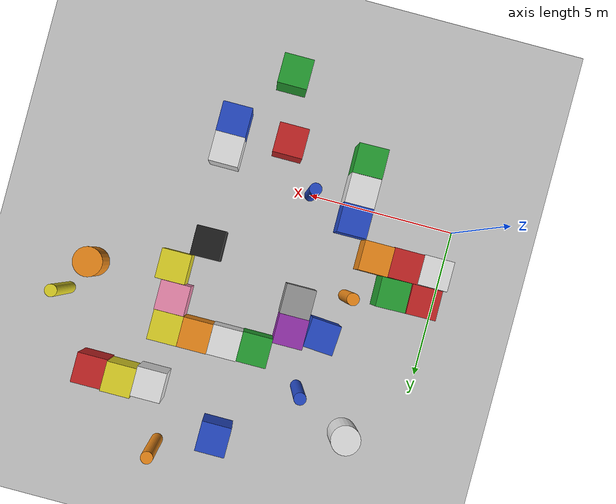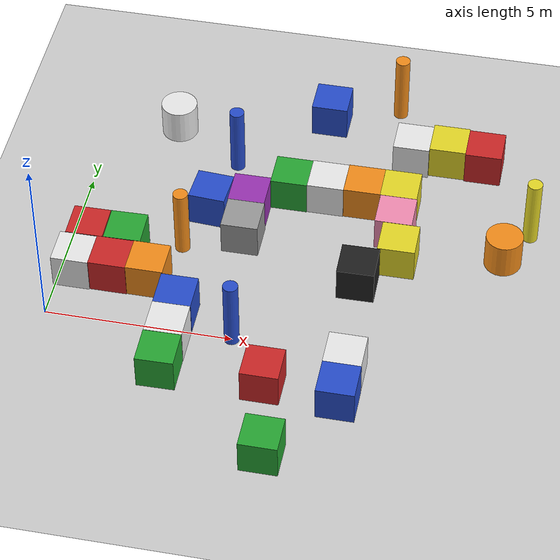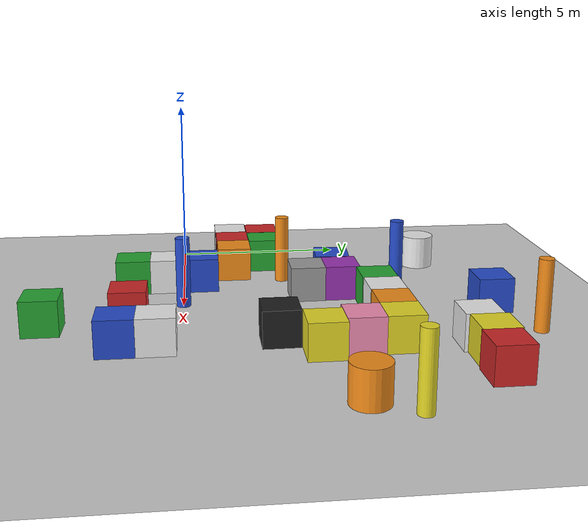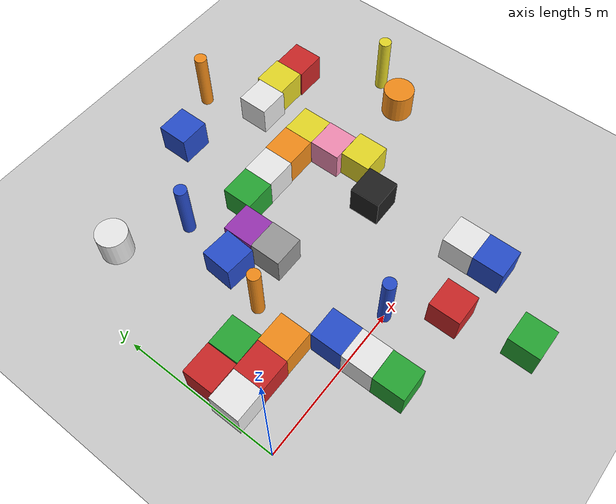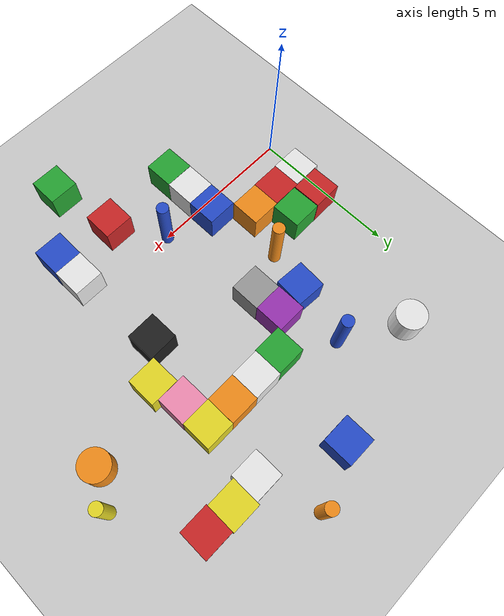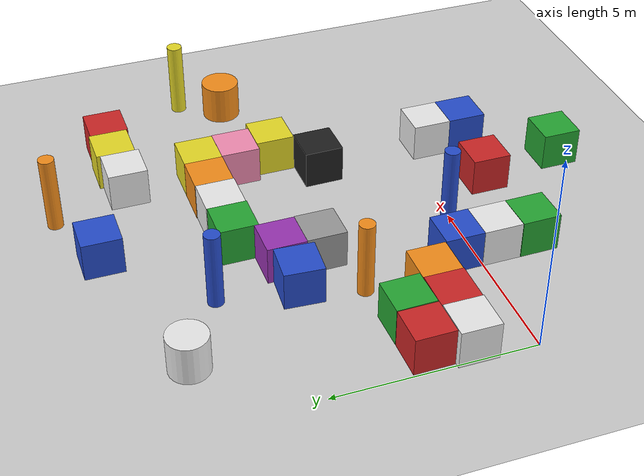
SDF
<sdf version="1.6">
 <world name="default">
  <light name="sun" type="directional">
   <pose>0 0 10 0 -0 0</pose>
   <diffuse>0.8 0.8 0.8 1</diffuse>
   <specular>0.1 0.1 0.1 1</specular>
   <attenuation>
    <range>1000</range>
    <constant>0.9</constant>
    <linear>0.01</linear>
    <quadratic>0.001</quadratic>
   </attenuation>
   <direction>-0.5 0.5 -1</direction>
  </light>
  <model name="ground_plane">
   <static>1</static>
   <link name="link">
    <collision name="collision">
     <geometry><plane><normal>0 0 1</normal><size>100 100</size></plane></geometry>
     <surface><friction><ode><mu>100</mu><mu2>50</mu2></ode></friction></surface>
    </collision>
    <visual name="visual">
     <cast_shadows>0</cast_shadows>
     <geometry><plane><normal>0 0 1</normal><size>100 100</size></plane></geometry>
     <material>
      <script><uri>file://media/materials/scripts/gazebo.material</uri><name>Gazebo/Grey</name></script>
     </material>
    </visual>
   </link>
  </model>
  <gravity>0 0 -9.8</gravity>
  <magnetic_field>6e-06 2.3e-05 -4.2e-05</magnetic_field>
  <atmosphere type="adiabatic"/>
  <physics name="default_physics" default="0" type="ode">
   <max_step_size>0.001</max_step_size>
   <real_time_factor>1</real_time_factor>
   <real_time_update_rate>1000</real_time_update_rate>
  </physics>
  <scene><ambient>0.4 0.4 0.4 1</ambient><background>0.7 0.7 0.7 1</background><shadows>1</shadows></scene>
  <spherical_coordinates>
   <surface_model>EARTH_WGS84</surface_model>
   <latitude_deg>0</latitude_deg>
   <longitude_deg>0</longitude_deg>
   <elevation>0</elevation>
   <heading_deg>0</heading_deg>
  </spherical_coordinates>
  <model name="model_2">
   <link name="my_box">
    <inertial>
     <mass>1</mass>
     <inertia><ixx>1</ixx><ixy>0</ixy><ixz>0</ixz><iyy>100</iyy><iyz>0</iyz><izz>1</izz></inertia>
    </inertial>
    <collision name="my_box_collision">
     <pose>0 0 1 0 -0 0</pose>
     <geometry><cylinder><length>2</length><radius>0.2</radius></cylinder></geometry>
    </collision>
    <visual name="my_box_visual">
     <pose>0 0 1 0 -0 0</pose>
     <geometry><cylinder><length>2</length><radius>0.2</radius></cylinder></geometry>
     <material>
      <script><name>Gazebo/Blue</name><uri>file://media/materials/scripts/gazebo.material</uri></script>
     </material>
    </visual>
   </link>
   <pose>5 0 -1e-06 0 -0 0</pose>
  </model>
  <model name="model_1">
   <link name="my_box">
    <inertial>
     <mass>1</mass>
     <inertia><ixx>1</ixx><ixy>0</ixy><ixz>0</ixz><iyy>100</iyy><iyz>0</iyz><izz>1</izz></inertia>
    </inertial>
    <collision name="my_box_collision">
     <pose>0 0 1 0 -0 0</pose>
     <geometry><cylinder><length>2</length><radius>0.2</radius></cylinder></geometry>
    </collision>
    <visual name="my_box_visual">
     <pose>0 0 1 0 -0 0</pose>
     <geometry><cylinder><length>2</length><radius>0.2</radius></cylinder></geometry>
     <material>
      <script><name>Gazebo/Orange</name><uri>file://media/materials/scripts/gazebo.material</uri></script>
     </material>
    </visual>
   </link>
   <pose>3 3 -9e-06 0 -0 0</pose>
  </model>
  <model name="unit_box_0">
   <pose>0.56706 2.5251 0.499995 -1e-05 0 0.011377</pose>
   <link name="link">
    <inertial>
     <mass>1</mass>
     <inertia>
      <ixx>0.166667</ixx>
      <ixy>0</ixy>
      <ixz>0</ixz>
      <iyy>0.166667</iyy>
      <iyz>0</iyz>
      <izz>0.166667</izz>
     </inertia>
    </inertial>
    <collision name="collision"><geometry><box><size>1 1 1</size></box></geometry></collision>
    <visual name="visual">
     <geometry><box><size>1 1 1</size></box></geometry>
     <material>
      <script><name>Gazebo/Red</name><uri>file://media/materials/scripts/gazebo.material</uri></script>
     </material>
    </visual>
   </link>
  </model>
  <model name="unit_box_1">
   <pose>1.58841 2.54289 0.499995 1e-05 -0 0.021621</pose>
   <link name="link">
    <inertial>
     <mass>1</mass>
     <inertia>
      <ixx>0.166667</ixx>
      <ixy>0</ixy>
      <ixz>0</ixz>
      <iyy>0.166667</iyy>
      <iyz>0</iyz>
      <izz>0.166667</izz>
     </inertia>
    </inertial>
    <collision name="collision"><geometry><box><size>1 1 1</size></box></geometry></collision>
    <visual name="visual">
     <geometry><box><size>1 1 1</size></box></geometry>
     <material>
      <script><name>Gazebo/Green</name><uri>file://media/materials/scripts/gazebo.material</uri></script>
     </material>
    </visual>
   </link>
  </model>
  <model name="unit_box_2">
   <pose>3.42516 0.521958 0.499995 0 1e-05 0.007024</pose>
   <link name="link">
    <inertial>
     <mass>1</mass>
     <inertia>
      <ixx>0.166667</ixx>
      <ixy>0</ixy>
      <ixz>0</ixz>
      <iyy>0.166667</iyy>
      <iyz>0</iyz>
      <izz>0.166667</izz>
     </inertia>
    </inertial>
    <collision name="collision"><geometry><box><size>1 1 1</size></box></geometry></collision>
    <visual name="visual">
     <geometry><box><size>1 1 1</size></box></geometry>
     <material>
      <script><name>Gazebo/Blue</name><uri>file://media/materials/scripts/gazebo.material</uri></script>
     </material>
    </visual>
   </link>
  </model>
  <model name="unit_box_3">
   <pose>4.51931 4.57068 0.499995 0 -1e-05 0.006026</pose>
   <link name="link">
    <inertial>
     <mass>1</mass>
     <inertia>
      <ixx>0.166667</ixx>
      <ixy>0</ixy>
      <ixz>0</ixz>
      <iyy>0.166667</iyy>
      <iyz>0</iyz>
      <izz>0.166667</izz>
     </inertia>
    </inertial>
    <collision name="collision"><geometry><box><size>1 1 1</size></box></geometry></collision>
    <visual name="visual">
     <geometry><box><size>1 1 1</size></box></geometry>
     <material>
      <script><name>Gazebo/Purple</name><uri>file://media/materials/scripts/gazebo.material</uri></script>
     </material>
    </visual>
   </link>
  </model>
  <model name="unit_box_4">
   <pose>3.48415 4.46033 0.5 0 0 -0.068279</pose>
   <link name="link">
    <inertial>
     <mass>1</mass>
     <inertia>
      <ixx>0.166667</ixx>
      <ixy>0</ixy>
      <ixz>0</ixz>
      <iyy>0.166667</iyy>
      <iyz>0</iyz>
      <izz>0.166667</izz>
     </inertia>
    </inertial>
    <collision name="collision"><geometry><box><size>1 1 1</size></box></geometry></collision>
    <visual name="visual">
     <geometry><box><size>1 1 1</size></box></geometry>
     <material>
      <script><name>Gazebo/Blue</name><uri>file://media/materials/scripts/gazebo.material</uri></script>
     </material>
    </visual>
   </link>
  </model>
  <model name="unit_box_5">
   <pose>5.51478 5.45584 0.499995 1e-05 -0 0.004832</pose>
   <link name="link">
    <inertial>
     <mass>1</mass>
     <inertia>
      <ixx>0.166667</ixx>
      <ixy>0</ixy>
      <ixz>0</ixz>
      <iyy>0.166667</iyy>
      <iyz>0</iyz>
      <izz>0.166667</izz>
     </inertia>
    </inertial>
    <collision name="collision"><geometry><box><size>1 1 1</size></box></geometry></collision>
    <visual name="visual">
     <geometry><box><size>1 1 1</size></box></geometry>
     <material>
      <script><name>Gazebo/Green</name><uri>file://media/materials/scripts/gazebo.material</uri></script>
     </material>
    </visual>
   </link>
  </model>
  <model name="unit_box_6">
   <pose>6.51469 5.479 0.499995 1e-05 -0 0.004839</pose>
   <link name="link">
    <inertial>
     <mass>1</mass>
     <inertia>
      <ixx>0.166667</ixx>
      <ixy>0</ixy>
      <ixz>0</ixz>
      <iyy>0.166667</iyy>
      <iyz>0</iyz>
      <izz>0.166667</izz>
     </inertia>
    </inertial>
    <collision name="collision"><geometry><box><size>1 1 1</size></box></geometry></collision>
    <visual name="visual">
     <geometry><box><size>1 1 1</size></box></geometry>
     <material>
      <script><name>Gazebo/White</name><uri>file://media/materials/scripts/gazebo.material</uri></script>
     </material>
    </visual>
   </link>
  </model>
  <model name="unit_box_7">
   <pose>7.51493 5.4972 0.5 0 -0 0.005481</pose>
   <link name="link">
    <inertial>
     <mass>1</mass>
     <inertia>
      <ixx>0.166667</ixx>
      <ixy>0</ixy>
      <ixz>0</ixz>
      <iyy>0.166667</iyy>
      <iyz>0</iyz>
      <izz>0.166667</izz>
     </inertia>
    </inertial>
    <collision name="collision"><geometry><box><size>1 1 1</size></box></geometry></collision>
    <visual name="visual">
     <geometry><box><size>1 1 1</size></box></geometry>
     <material>
      <script><name>Gazebo/Orange</name><uri>file://media/materials/scripts/gazebo.material</uri></script>
     </material>
    </visual>
   </link>
  </model>
  <model name="unit_box_8">
   <pose>8.51552 5.50286 0.499995 -1e-05 0 0.004595</pose>
   <link name="link">
    <inertial>
     <mass>1</mass>
     <inertia>
      <ixx>0.166667</ixx>
      <ixy>0</ixy>
      <ixz>0</ixz>
      <iyy>0.166667</iyy>
      <iyz>0</iyz>
      <izz>0.166667</izz>
     </inertia>
    </inertial>
    <collision name="collision"><geometry><box><size>1 1 1</size></box></geometry></collision>
    <visual name="visual">
     <geometry><box><size>1 1 1</size></box></geometry>
     <material>
      <script><name>Gazebo/Yellow</name><uri>file://media/materials/scripts/gazebo.material</uri></script>
     </material>
    </visual>
   </link>
  </model>
  <model name="unit_box_9">
   <pose>8.53764 4.50171 0.499995 1e-05 -0 0.00505</pose>
   <link name="link">
    <inertial>
     <mass>1</mass>
     <inertia>
      <ixx>0.166667</ixx>
      <ixy>0</ixy>
      <ixz>0</ixz>
      <iyy>0.166667</iyy>
      <iyz>0</iyz>
      <izz>0.166667</izz>
     </inertia>
    </inertial>
    <collision name="collision"><geometry><box><size>1 1 1</size></box></geometry></collision>
    <visual name="visual">
     <geometry><box><size>1 1 1</size></box></geometry>
     <material>
      <script><name>Gazebo/Pink</name><uri>file://media/materials/scripts/gazebo.material</uri></script>
     </material>
    </visual>
   </link>
  </model>
  <model name="unit_cylinder_1">
   <pose>11.5174 4.07528 0.499993 -3e-06 -2e-06 -6.4e-05</pose>
   <link name="link">
    <inertial>
     <mass>1</mass>
     <inertia><ixx>0.145833</ixx><ixy>0</ixy><ixz>0</ixz><iyy>0.145833</iyy><iyz>0</iyz><izz>0.125</izz></inertia>
    </inertial>
    <collision name="collision">
     <geometry><cylinder><radius>0.5</radius><length>1</length></cylinder></geometry>
    </collision>
    <visual name="visual">
     <geometry><cylinder><radius>0.5</radius><length>1</length></cylinder></geometry>
     <material>
      <script><name>Gazebo/Orange</name><uri>file://media/materials/scripts/gazebo.material</uri></script>
     </material>
    </visual>
   </link>
  </model>
  <model name="unit_cylinder_2">
   <pose>1.87784 7.53775 0.499994 -4e-06 -1e-06 0</pose>
   <link name="link">
    <inertial>
     <mass>1</mass>
     <inertia><ixx>0.145833</ixx><ixy>0</ixy><ixz>0</ixz><iyy>0.145833</iyy><iyz>0</iyz><izz>0.125</izz></inertia>
    </inertial>
    <collision name="collision">
     <geometry><cylinder><radius>0.5</radius><length>1</length></cylinder></geometry>
    </collision>
    <visual name="visual">
     <geometry><cylinder><radius>0.5</radius><length>1</length></cylinder></geometry>
     <material>
      <script><name>Gazebo/White</name><uri>file://media/materials/scripts/gazebo.material</uri></script>
     </material>
    </visual>
   </link>
  </model>
  <model name="unit_box_10">
   <pose>6.06237 8.61951 0.499995 0 1e-05 -1e-05</pose>
   <link name="link">
    <inertial>
     <mass>1</mass>
     <inertia>
      <ixx>0.166667</ixx>
      <ixy>0</ixy>
      <ixz>0</ixz>
      <iyy>0.166667</iyy>
      <iyz>0</iyz>
      <izz>0.166667</izz>
     </inertia>
    </inertial>
    <collision name="collision"><geometry><box><size>1 1 1</size></box></geometry></collision>
    <visual name="visual">
     <geometry><box><size>1 1 1</size></box></geometry>
     <material>
      <script><name>Gazebo/Blue</name><uri>file://media/materials/scripts/gazebo.material</uri></script>
     </material>
    </visual>
   </link>
  </model>
  <model name="unit_box_11">
   <pose>9.55676 7.53593 0.499995 -1e-05 0 0.002414</pose>
   <link name="link">
    <inertial>
     <mass>1</mass>
     <inertia>
      <ixx>0.166667</ixx>
      <ixy>0</ixy>
      <ixz>0</ixz>
      <iyy>0.166667</iyy>
      <iyz>0</iyz>
      <izz>0.166667</izz>
     </inertia>
    </inertial>
    <collision name="collision"><geometry><box><size>1 1 1</size></box></geometry></collision>
    <visual name="visual">
     <geometry><box><size>1 1 1</size></box></geometry>
     <material>
      <script><name>Gazebo/Yellow</name><uri>file://media/materials/scripts/gazebo.material</uri></script>
     </material>
    </visual>
   </link>
  </model>
  <model name="unit_box_12">
   <pose>8.55699 7.4387 0.499995 -1e-05 -0 0.002416</pose>
   <link name="link">
    <inertial>
     <mass>1</mass>
     <inertia>
      <ixx>0.166667</ixx>
      <ixy>0</ixy>
      <ixz>0</ixz>
      <iyy>0.166667</iyy>
      <iyz>0</iyz>
      <izz>0.166667</izz>
     </inertia>
    </inertial>
    <collision name="collision"><geometry><box><size>1 1 1</size></box></geometry></collision>
    <visual name="visual">
     <geometry><box><size>1 1 1</size></box></geometry>
     <material>
      <script><name>Gazebo/White</name><uri>file://media/materials/scripts/gazebo.material</uri></script>
     </material>
    </visual>
   </link>
  </model>
  <model name="unit_box_13">
   <pose>0.436671 1.5071 0.499995 0 -1e-05 0.000746</pose>
   <link name="link">
    <inertial>
     <mass>1</mass>
     <inertia>
      <ixx>0.166667</ixx>
      <ixy>0</ixy>
      <ixz>0</ixz>
      <iyy>0.166667</iyy>
      <iyz>0</iyz>
      <izz>0.166667</izz>
     </inertia>
    </inertial>
    <collision name="collision"><geometry><box><size>1 1 1</size></box></geometry></collision>
    <visual name="visual">
     <geometry><box><size>1 1 1</size></box></geometry>
     <material>
      <script><name>Gazebo/White</name><uri>file://media/materials/scripts/gazebo.material</uri></script>
     </material>
    </visual>
   </link>
  </model>
  <model name="unit_box_14">
   <pose>1.43671 1.52938 0.499995 -0 1e-05 0.000769</pose>
   <link name="link">
    <inertial>
     <mass>1</mass>
     <inertia>
      <ixx>0.166667</ixx>
      <ixy>0</ixy>
      <ixz>0</ixz>
      <iyy>0.166667</iyy>
      <iyz>0</iyz>
      <izz>0.166667</izz>
     </inertia>
    </inertial>
    <collision name="collision"><geometry><box><size>1 1 1</size></box></geometry></collision>
    <visual name="visual">
     <geometry><box><size>1 1 1</size></box></geometry>
     <material>
      <script><name>Gazebo/Red</name><uri>file://media/materials/scripts/gazebo.material</uri></script>
     </material>
    </visual>
   </link>
  </model>
  <model name="unit_box_15">
   <pose>2.43673 1.54404 0.499995 -1e-05 -0 0.000759</pose>
   <link name="link">
    <inertial>
     <mass>1</mass>
     <inertia>
      <ixx>0.166667</ixx>
      <ixy>0</ixy>
      <ixz>0</ixz>
      <iyy>0.166667</iyy>
      <iyz>0</iyz>
      <izz>0.166667</izz>
     </inertia>
    </inertial>
    <collision name="collision"><geometry><box><size>1 1 1</size></box></geometry></collision>
    <visual name="visual">
     <geometry><box><size>1 1 1</size></box></geometry>
     <material>
      <script><name>Gazebo/Orange</name><uri>file://media/materials/scripts/gazebo.material</uri></script>
     </material>
    </visual>
   </link>
  </model>
  <model name="unit_box_16">
   <pose>3.42782 -0.47824 0.499995 0 1e-05 0.007044</pose>
   <link name="link">
    <inertial>
     <mass>1</mass>
     <inertia>
      <ixx>0.166667</ixx>
      <ixy>0</ixy>
      <ixz>0</ixz>
      <iyy>0.166667</iyy>
      <iyz>0</iyz>
      <izz>0.166667</izz>
     </inertia>
    </inertial>
    <collision name="collision"><geometry><box><size>1 1 1</size></box></geometry></collision>
    <visual name="visual">
     <geometry><box><size>1 1 1</size></box></geometry>
     <material>
      <script><name>Gazebo/White</name><uri>file://media/materials/scripts/gazebo.material</uri></script>
     </material>
    </visual>
   </link>
  </model>
  <model name="unit_box_17">
   <pose>3.43343 -1.48239 0.499995 1e-05 -0 0.014804</pose>
   <link name="link">
    <inertial>
     <mass>1</mass>
     <inertia>
      <ixx>0.166667</ixx>
      <ixy>0</ixy>
      <ixz>0</ixz>
      <iyy>0.166667</iyy>
      <iyz>0</iyz>
      <izz>0.166667</izz>
     </inertia>
    </inertial>
    <collision name="collision"><geometry><box><size>1 1 1</size></box></geometry></collision>
    <visual name="visual">
     <geometry><box><size>1 1 1</size></box></geometry>
     <material>
      <script><name>Gazebo/Green</name><uri>file://media/materials/scripts/gazebo.material</uri></script>
     </material>
    </visual>
   </link>
  </model>
  <model name="unit_box_18">
   <pose>8.0798 -0.648742 0.499995 -1e-05 0 0.000998</pose>
   <link name="link">
    <inertial>
     <mass>1</mass>
     <inertia>
      <ixx>0.166667</ixx>
      <ixy>0</ixy>
      <ixz>0</ixz>
      <iyy>0.166667</iyy>
      <iyz>0</iyz>
      <izz>0.166667</izz>
     </inertia>
    </inertial>
    <collision name="collision"><geometry><box><size>1 1 1</size></box></geometry></collision>
    <visual name="visual">
     <geometry><box><size>1 1 1</size></box></geometry>
     <material>
      <script><name>Gazebo/White</name><uri>file://media/materials/scripts/gazebo.material</uri></script>
     </material>
    </visual>
   </link>
  </model>
  <model name="unit_box_19">
   <pose>10.5569 7.49686 0.499995 0 -1e-05 0.002334</pose>
   <link name="link">
    <inertial>
     <mass>1</mass>
     <inertia>
      <ixx>0.166667</ixx>
      <ixy>0</ixy>
      <ixz>0</ixz>
      <iyy>0.166667</iyy>
      <iyz>0</iyz>
      <izz>0.166667</izz>
     </inertia>
    </inertial>
    <collision name="collision"><geometry><box><size>1 1 1</size></box></geometry></collision>
    <visual name="visual">
     <geometry><box><size>1 1 1</size></box></geometry>
     <material>
      <script><name>Gazebo/Red</name><uri>file://media/materials/scripts/gazebo.material</uri></script>
     </material>
    </visual>
   </link>
  </model>
  <model name="unit_box_20">
   <pose>8.77296 3.49776 0.499995 -1e-05 -0 0.006374</pose>
   <link name="link">
    <inertial>
     <mass>1</mass>
     <inertia>
      <ixx>0.166667</ixx>
      <ixy>0</ixy>
      <ixz>0</ixz>
      <iyy>0.166667</iyy>
      <iyz>0</iyz>
      <izz>0.166667</izz>
     </inertia>
    </inertial>
    <collision name="collision"><geometry><box><size>1 1 1</size></box></geometry></collision>
    <visual name="visual">
     <geometry><box><size>1 1 1</size></box></geometry>
     <material>
      <script><name>Gazebo/Yellow</name><uri>file://media/materials/scripts/gazebo.material</uri></script>
     </material>
    </visual>
   </link>
  </model>
  <model name="model_2_clone">
   <link name="my_box">
    <inertial>
     <mass>1</mass>
     <inertia><ixx>1</ixx><ixy>0</ixy><ixz>0</ixz><iyy>100</iyy><iyz>0</iyz><izz>1</izz></inertia>
    </inertial>
    <collision name="my_box_collision">
     <pose>0 0 1 0 -0 0</pose>
     <geometry><cylinder><length>2</length><radius>0.2</radius></cylinder></geometry>
    </collision>
    <visual name="my_box_visual">
     <pose>0 0 1 0 -0 0</pose>
     <geometry><cylinder><length>2</length><radius>0.2</radius></cylinder></geometry>
     <material>
      <script><name>Gazebo/Blue</name><uri>file://media/materials/scripts/gazebo.material</uri></script>
     </material>
    </visual>
   </link>
   <pose>3.79216 6.40427 -9e-06 0 -0 0</pose>
  </model>
  <model name="model_2_clone_1">
   <link name="my_box">
    <inertial>
     <mass>1</mass>
     <inertia><ixx>1</ixx><ixy>0</ixy><ixz>0</ixz><iyy>100</iyy><iyz>0</iyz><izz>1</izz></inertia>
    </inertial>
    <collision name="my_box_collision">
     <pose>0 0 1 0 -0 0</pose>
     <geometry><cylinder><length>2</length><radius>0.2</radius></cylinder></geometry>
    </collision>
    <visual name="my_box_visual">
     <pose>0 0 1 0 -0 0</pose>
     <geometry><cylinder><length>2</length><radius>0.2</radius></cylinder></geometry>
     <material>
      <script><name>Gazebo/Yellow</name><uri>file://media/materials/scripts/gazebo.material</uri></script>
     </material>
    </visual>
   </link>
   <pose>12.1254 5.15043 -9e-06 0 -0 0</pose>
  </model>
  <model name="model_2_clone_4">
   <link name="my_box">
    <inertial>
     <mass>1</mass>
     <inertia><ixx>1</ixx><ixy>0</ixy><ixz>0</ixz><iyy>100</iyy><iyz>0</iyz><izz>1</izz></inertia>
    </inertial>
    <collision name="my_box_collision">
     <pose>0 0 1 0 -0 0</pose>
     <geometry><cylinder><length>2</length><radius>0.2</radius></cylinder></geometry>
    </collision>
    <visual name="my_box_visual">
     <pose>0 0 1 0 -0 0</pose>
     <geometry><cylinder><length>2</length><radius>0.2</radius></cylinder></geometry>
     <material>
      <script><name>Gazebo/Orange</name><uri>file://media/materials/scripts/gazebo.material</uri></script>
     </material>
    </visual>
   </link>
   <pose>7.91289 9.39248 0 0 -0 0</pose>
  </model>
  <model name="unit_box_23_0">
   <pose>7.86592 2.47009 0.499995 0 1e-05 0.014056</pose>
   <link name="link">
    <inertial>
     <mass>1</mass>
     <inertia>
      <ixx>0.166667</ixx>
      <ixy>0</ixy>
      <ixz>0</ixz>
      <iyy>0.166667</iyy>
      <iyz>0</iyz>
      <izz>0.166667</izz>
     </inertia>
    </inertial>
    <collision name="collision"><geometry><box><size>1 1 1</size></box></geometry></collision>
    <visual name="visual">
     <geometry><box><size>1 1 1</size></box></geometry>
     <material>
      <script><name>Gazebo/Black</name><uri>file://media/materials/scripts/gazebo.material</uri></script>
     </material>
    </visual>
   </link>
  </model>
  <model name="unit_box_23_2">
   <pose>4.53948 3.57041 0.499995 0 1e-05 0.00539</pose>
   <link name="link">
    <inertial>
     <mass>1</mass>
     <inertia>
      <ixx>0.166667</ixx>
      <ixy>0</ixy>
      <ixz>0</ixz>
      <iyy>0.166667</iyy>
      <iyz>0</iyz>
      <izz>0.166667</izz>
     </inertia>
    </inertial>
    <collision name="collision"><geometry><box><size>1 1 1</size></box></geometry></collision>
    <visual name="visual">
     <geometry><box><size>1 1 1</size></box></geometry>
     <material>
      <script><name>Gazebo/Grey</name><uri>file://media/materials/scripts/gazebo.material</uri></script>
     </material>
    </visual>
   </link>
  </model>
  <model name="unit_box_23_3">
   <pose>8.08586 -1.64881 0.499995 -1e-05 -0 0.001036</pose>
   <link name="link">
    <inertial>
     <mass>1</mass>
     <inertia>
      <ixx>0.166667</ixx>
      <ixy>0</ixy>
      <ixz>0</ixz>
      <iyy>0.166667</iyy>
      <iyz>0</iyz>
      <izz>0.166667</izz>
     </inertia>
    </inertial>
    <collision name="collision"><geometry><box><size>1 1 1</size></box></geometry></collision>
    <visual name="visual">
     <geometry><box><size>1 1 1</size></box></geometry>
     <material>
      <script><name>Gazebo/Blue</name><uri>file://media/materials/scripts/gazebo.material</uri></script>
     </material>
    </visual>
   </link>
  </model>
  <model name="unit_box_23_4">
   <pose>6.55251 -3.68308 0.499995 -1e-05 -0 -5e-06</pose>
   <link name="link">
    <inertial>
     <mass>1</mass>
     <inertia>
      <ixx>0.166667</ixx>
      <ixy>0</ixy>
      <ixz>0</ixz>
      <iyy>0.166667</iyy>
      <iyz>0</iyz>
      <izz>0.166667</izz>
     </inertia>
    </inertial>
    <collision name="collision"><geometry><box><size>1 1 1</size></box></geometry></collision>
    <visual name="visual">
     <geometry><box><size>1 1 1</size></box></geometry>
     <material>
      <script><name>Gazebo/Green</name><uri>file://media/materials/scripts/gazebo.material</uri></script>
     </material>
    </visual>
   </link>
  </model>
  <model name="unit_box_22_0">
   <pose>6.12165 -1.46016 0.499995 -1e-05 0 0</pose>
   <link name="link">
    <inertial>
     <mass>1</mass>
     <inertia>
      <ixx>0.166667</ixx>
      <ixy>0</ixy>
      <ixz>0</ixz>
      <iyy>0.166667</iyy>
      <iyz>0</iyz>
      <izz>0.166667</izz>
     </inertia>
    </inertial>
    <collision name="collision"><geometry><box><size>1 1 1</size></box></geometry></collision>
    <visual name="visual">
     <geometry><box><size>1 1 1</size></box></geometry>
     <material>
      <script><name>Gazebo/Red</name><uri>file://media/materials/scripts/gazebo.material</uri></script>
     </material>
    </visual>
   </link>
  </model>
 </world>
</sdf>
